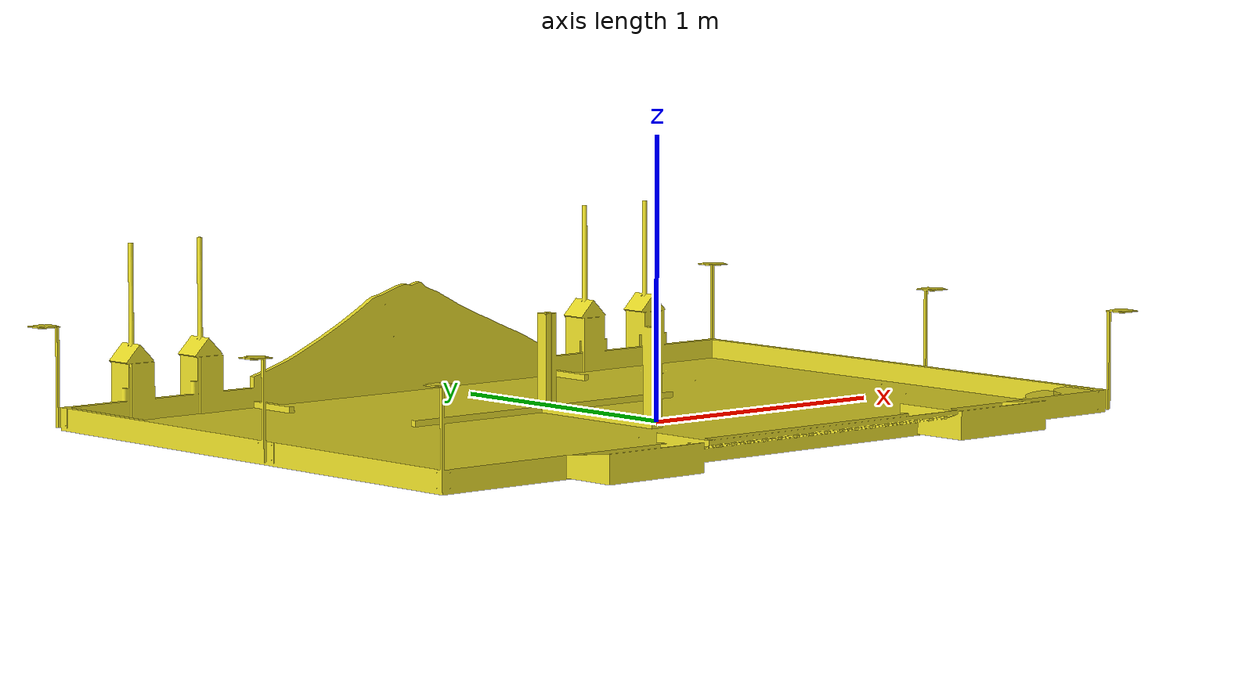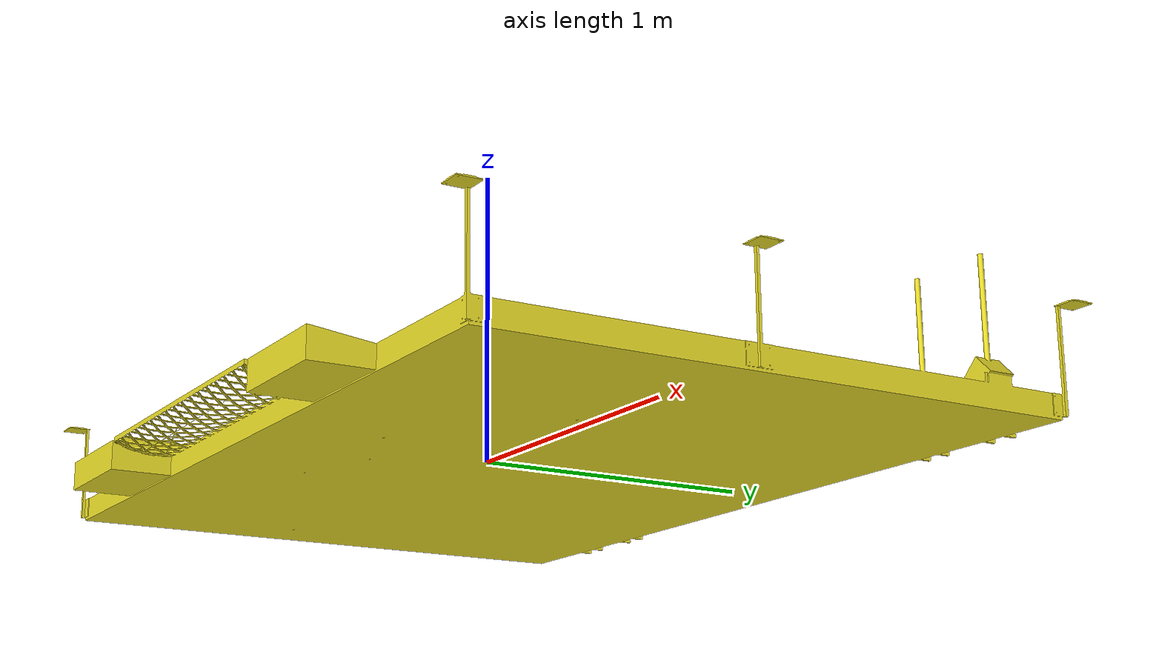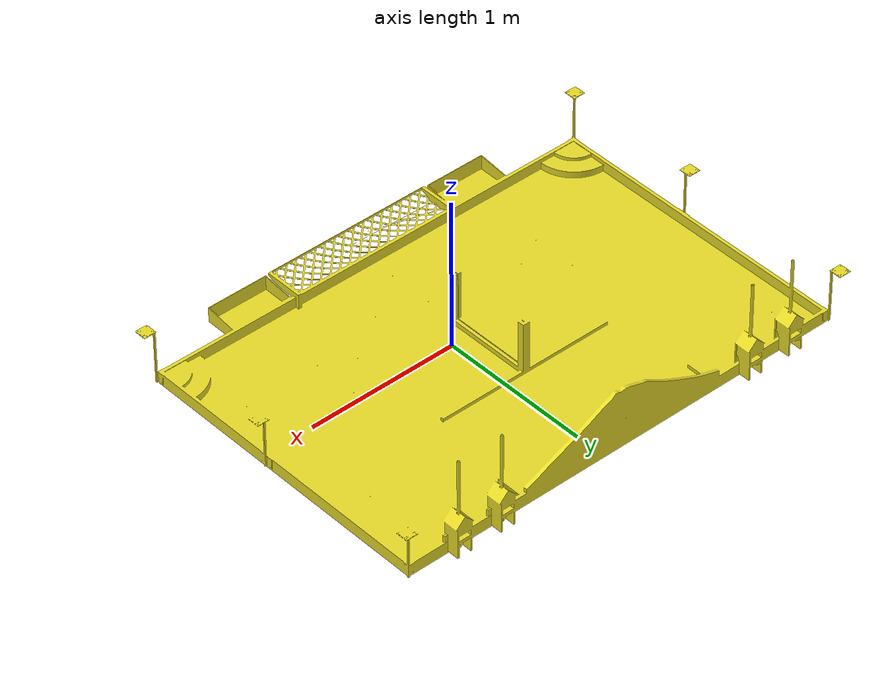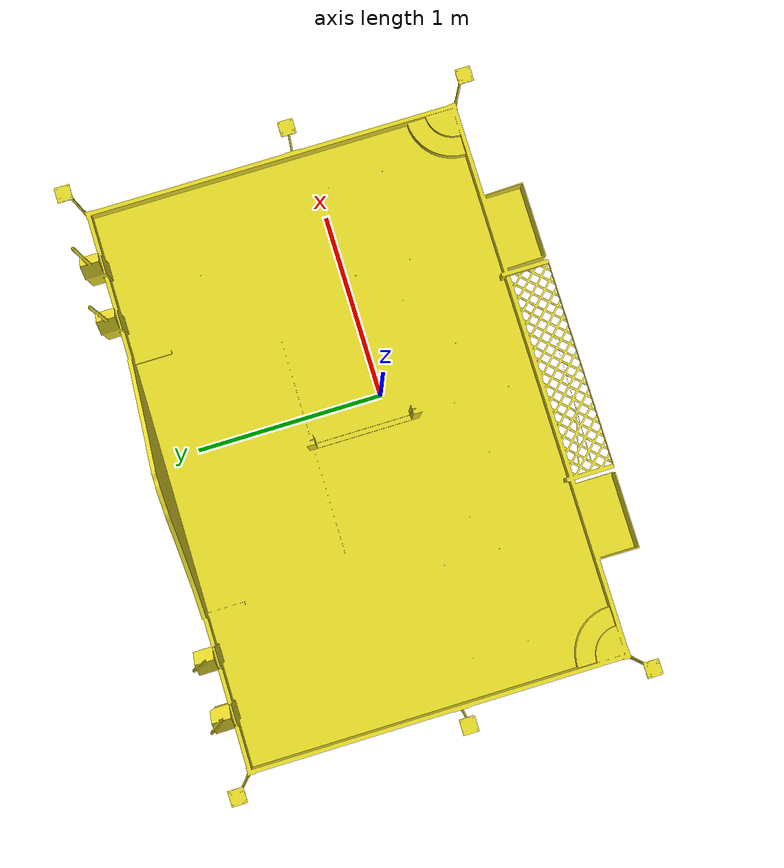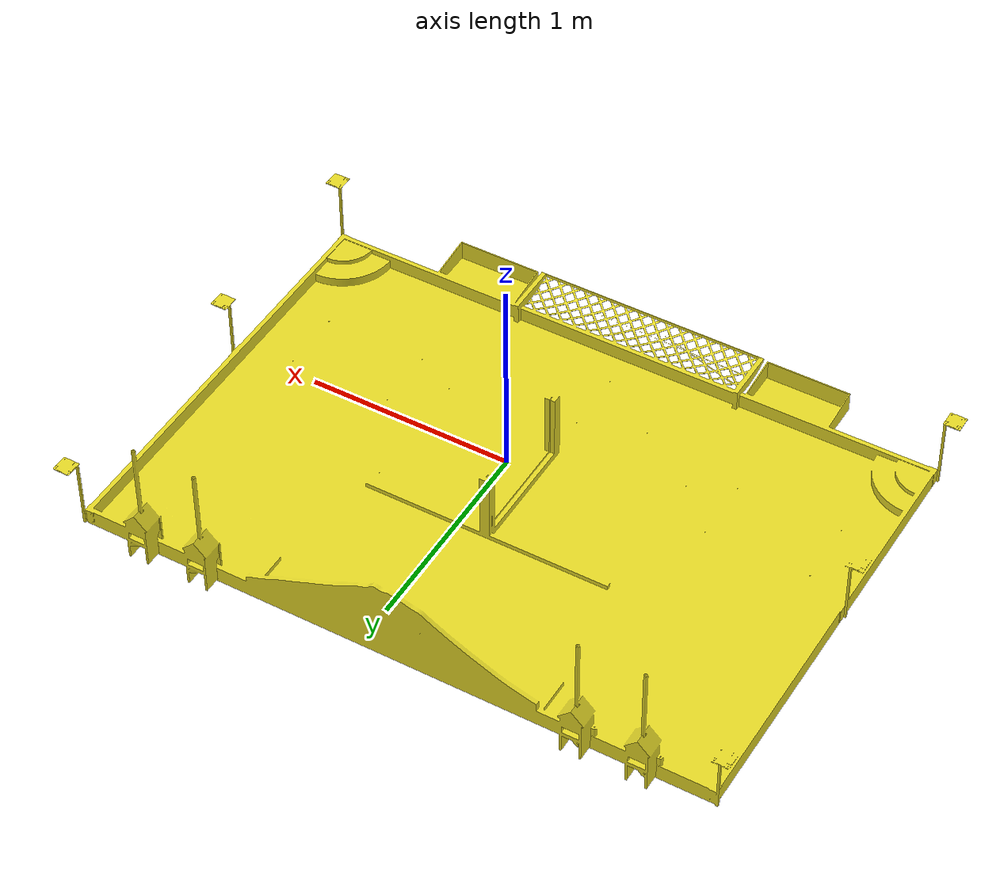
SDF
<?xml version="1.0" ?>
<sdf version="1.4">
  <model name="table2016">
    <pose>0 0 1  1.5708 0 0</pose>
    <static>true</static>
    <link name="body">
      <visual name="visual">
        <geometry>
          <mesh>
            <uri>model://table2016/meshes/table.dae</uri>
          </mesh>
        </geometry>
        <material>
          <script>
            <uri>file://media/materials/scripts/gazebo.material</uri>
            <name>Gazebo/Yellow</name>
          </script>
        </material>
      </visual>
      <collision name="collision">
        <geometry>
          <mesh>
            <uri>model://table2016/meshes/table.dae</uri>
          </mesh>
        </geometry>
      </collision>
    </link>
  </model>
</sdf>
